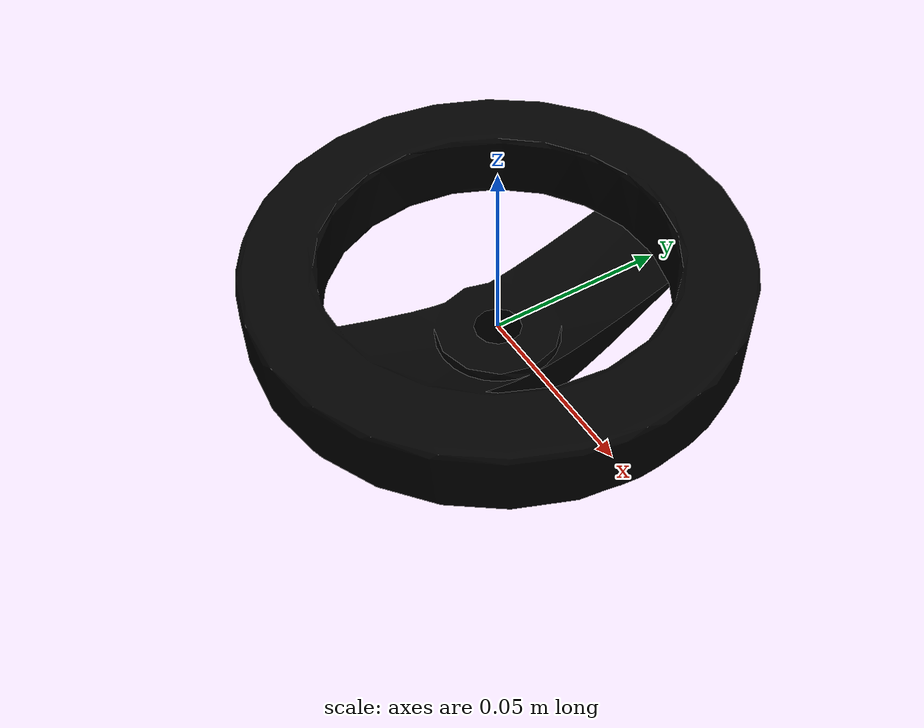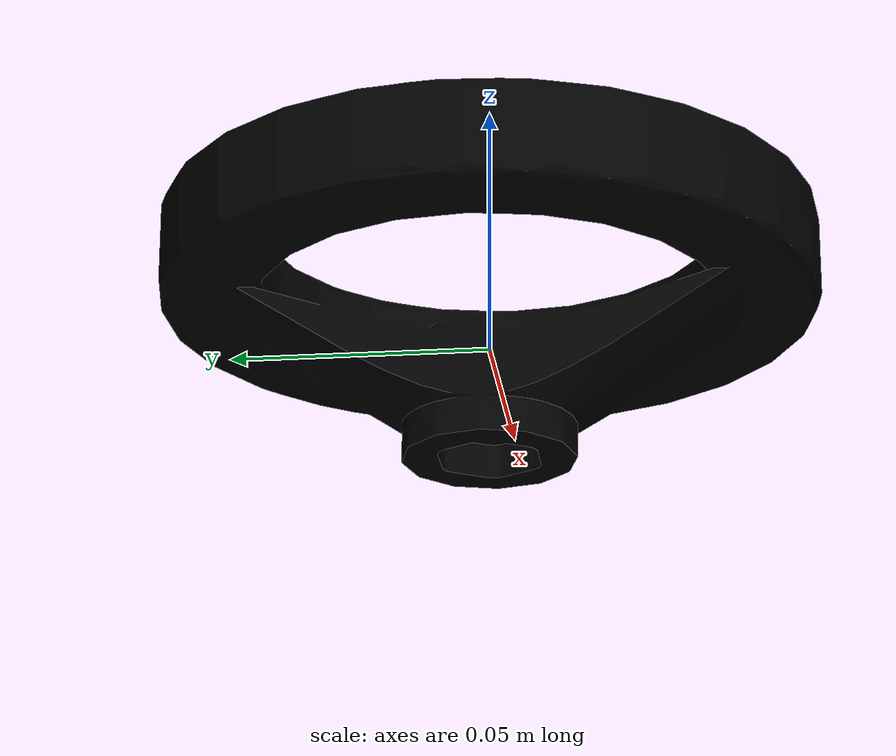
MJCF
<mujoco model="crank_wheel">
  <default>
    <default class="visual">
      <geom group="2" type="mesh" contype="0" conaffinity="0"/>
    </default>
    <default class="collision">
      <geom group="3" type="mesh"/>
    </default>
  </default>
  <asset>
    <material name="mtl_crank_wheel" specular="0.20000000000000004" shininess="1.0" rgba="0.00000000 0.00000000 0.00000000 1.0"/>
    <mesh file="crank_wheel.obj"/>
    <mesh file="crank_wheel_collision_0.obj"/>
    <mesh file="crank_wheel_collision_1.obj"/>
    <mesh file="crank_wheel_collision_2.obj"/>
    <mesh file="crank_wheel_collision_3.obj"/>
    <mesh file="crank_wheel_collision_4.obj"/>
    <mesh file="crank_wheel_collision_5.obj"/>
    <mesh file="crank_wheel_collision_6.obj"/>
    <mesh file="crank_wheel_collision_7.obj"/>
    <mesh file="crank_wheel_collision_8.obj"/>
    <mesh file="crank_wheel_collision_9.obj"/>
    <mesh file="crank_wheel_collision_10.obj"/>
    <mesh file="crank_wheel_collision_11.obj"/>
    <mesh file="crank_wheel_collision_12.obj"/>
    <mesh file="crank_wheel_collision_13.obj"/>
    <mesh file="crank_wheel_collision_14.obj"/>
    <mesh file="crank_wheel_collision_15.obj"/>
    <mesh file="crank_wheel_collision_16.obj"/>
    <mesh file="crank_wheel_collision_17.obj"/>
    <mesh file="crank_wheel_collision_18.obj"/>
    <mesh file="crank_wheel_collision_19.obj"/>
    <mesh file="crank_wheel_collision_20.obj"/>
    <mesh file="crank_wheel_collision_21.obj"/>
    <mesh file="crank_wheel_collision_22.obj"/>
    <mesh file="crank_wheel_collision_23.obj"/>
    <mesh file="crank_wheel_collision_24.obj"/>
    <mesh file="crank_wheel_collision_25.obj"/>
    <mesh file="crank_wheel_collision_26.obj"/>
    <mesh file="crank_wheel_collision_27.obj"/>
    <mesh file="crank_wheel_collision_28.obj"/>
    <mesh file="crank_wheel_collision_29.obj"/>
    <mesh file="crank_wheel_collision_30.obj"/>
  </asset>
  <worldbody>
    <body name="crank_wheel">
      <geom material="mtl_crank_wheel" mesh="crank_wheel" class="visual"/>
      <geom mesh="crank_wheel_collision_0" rgba="0.651934063231425 0.829556218604165 0.04047950518056398 1" class="collision"/>
      <geom mesh="crank_wheel_collision_1" rgba="0.46014833453824633 0.004455673483302447 0.8172768459727364 1" class="collision"/>
      <geom mesh="crank_wheel_collision_2" rgba="0.2521389856963784 0.3820082473383518 0.5765505476690966 1" class="collision"/>
      <geom mesh="crank_wheel_collision_3" rgba="0.0022822554673613826 0.06133161677458243 0.7634651926475172 1" class="collision"/>
      <geom mesh="crank_wheel_collision_4" rgba="0.5199700471093315 0.4278922255159715 0.5926933035958848 1" class="collision"/>
      <geom mesh="crank_wheel_collision_5" rgba="0.9402307351275373 0.6424719776316613 0.28447466903814334 1" class="collision"/>
      <geom mesh="crank_wheel_collision_6" rgba="0.5647242309267037 0.8074282466901318 0.896806181571709 1" class="collision"/>
      <geom mesh="crank_wheel_collision_7" rgba="0.8676764905324549 0.041575858735577675 0.09826877675246548 1" class="collision"/>
      <geom mesh="crank_wheel_collision_8" rgba="0.9885763273282218 0.08473049975519331 0.43411102328648266 1" class="collision"/>
      <geom mesh="crank_wheel_collision_9" rgba="0.11774501533485304 0.677621466392404 0.5700838128543545 1" class="collision"/>
      <geom mesh="crank_wheel_collision_10" rgba="0.5092511862778822 0.41240264716908503 0.18719109551596802 1" class="collision"/>
      <geom mesh="crank_wheel_collision_11" rgba="0.7675349205223553 0.2218256383977576 0.8087971963397422 1" class="collision"/>
      <geom mesh="crank_wheel_collision_12" rgba="0.639065377786511 0.6349410757130894 0.5617791424295062 1" class="collision"/>
      <geom mesh="crank_wheel_collision_13" rgba="0.12797209137604315 0.08169964367487592 0.21864854931839528 1" class="collision"/>
      <geom mesh="crank_wheel_collision_14" rgba="0.29514223483928115 0.1646360871162752 0.23932680382634886 1" class="collision"/>
      <geom mesh="crank_wheel_collision_15" rgba="0.5504028083598344 0.061271513773644704 0.8766285713871121 1" class="collision"/>
      <geom mesh="crank_wheel_collision_16" rgba="0.6492082553118286 0.8734160313030653 0.12522539554783496 1" class="collision"/>
      <geom mesh="crank_wheel_collision_17" rgba="0.3475346432636972 0.8801296272245271 0.4415824260984259 1" class="collision"/>
      <geom mesh="crank_wheel_collision_18" rgba="0.011392223016500669 0.8521263929730452 0.3116327062316748 1" class="collision"/>
      <geom mesh="crank_wheel_collision_19" rgba="0.40709180157799507 0.610257470722152 0.9236419762434807 1" class="collision"/>
      <geom mesh="crank_wheel_collision_20" rgba="0.0734654636573352 0.40704716382416606 0.5188013266038745 1" class="collision"/>
      <geom mesh="crank_wheel_collision_21" rgba="0.7233381454658655 0.5138122209602873 0.8497366175434575 1" class="collision"/>
      <geom mesh="crank_wheel_collision_22" rgba="0.7788248110740262 0.7674839984710159 0.023658793975843806 1" class="collision"/>
      <geom mesh="crank_wheel_collision_23" rgba="0.3987294396686687 0.34188144822046007 0.17376619912907187 1" class="collision"/>
      <geom mesh="crank_wheel_collision_24" rgba="0.6044568131794184 0.9098972317305581 0.7636106761568192 1" class="collision"/>
      <geom mesh="crank_wheel_collision_25" rgba="0.8692269748854593 0.6259284814766941 0.22043053924762868 1" class="collision"/>
      <geom mesh="crank_wheel_collision_26" rgba="0.35909477072950835 0.3122047070985784 0.7305559787983733 1" class="collision"/>
      <geom mesh="crank_wheel_collision_27" rgba="0.46901838698467946 0.5317028202446682 0.5617556033118104 1" class="collision"/>
      <geom mesh="crank_wheel_collision_28" rgba="0.881731689409036 0.5514903873209007 0.853458216665114 1" class="collision"/>
      <geom mesh="crank_wheel_collision_29" rgba="0.18988109725698998 0.8398416009499976 0.7362040819235015 1" class="collision"/>
      <geom mesh="crank_wheel_collision_30" rgba="0.196203981735538 0.2118528540369221 0.20450335440230683 1" class="collision"/>
    </body>
  </worldbody>
</mujoco>
